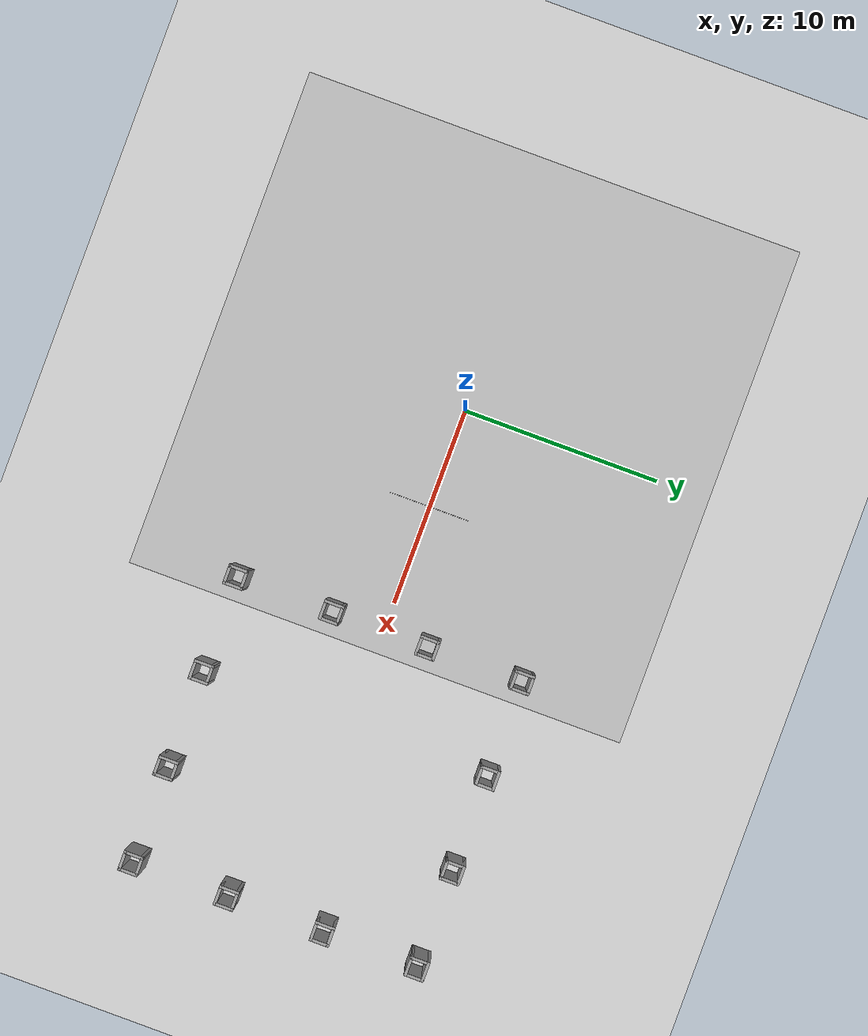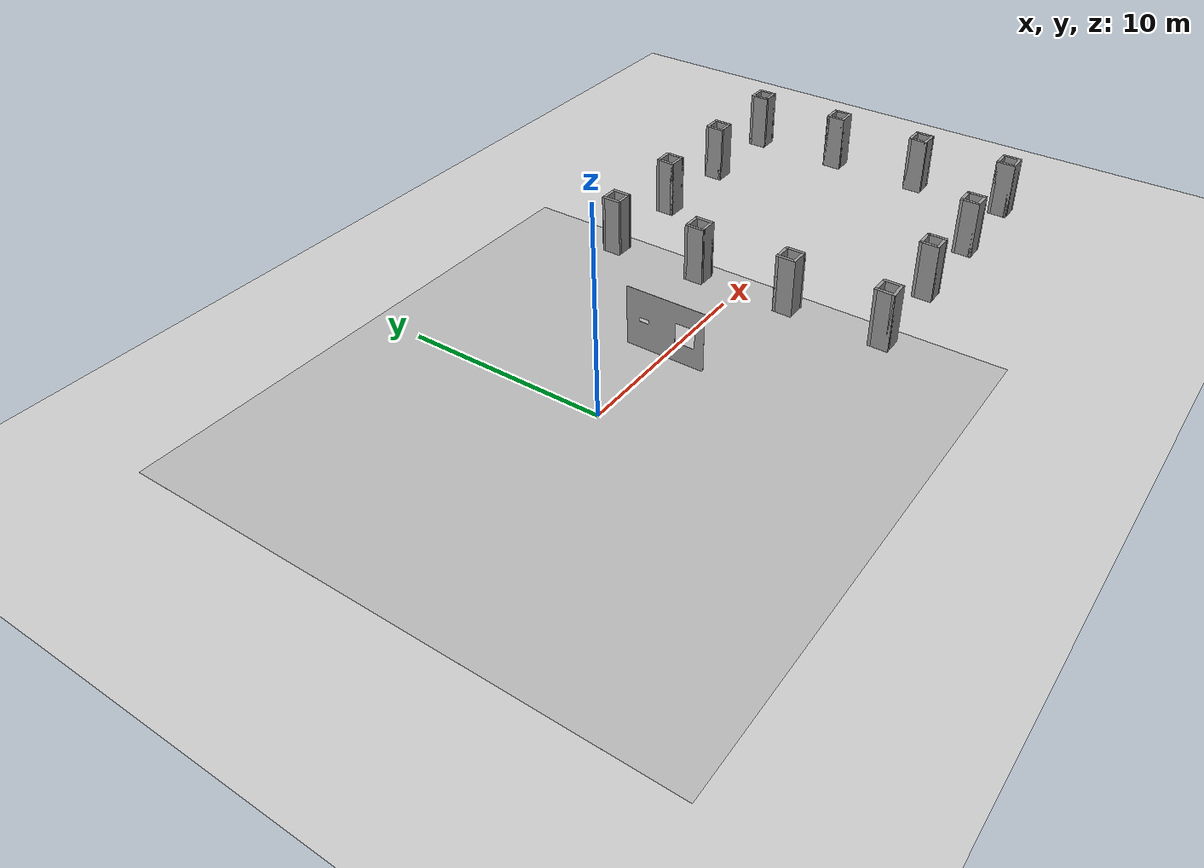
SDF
<sdf version="1.7">
 <world name="default">
  <scene><shadows>0</shadows><ambient>0.4 0.4 0.4 1</ambient><background>0.7 0.7 0.7 1</background></scene>
  <light name="sun" type="directional">
   <cast_shadows>0</cast_shadows>
   <pose>0 0 5 0 -0 0</pose>
   <diffuse>0.8 0.8 0.8 1</diffuse>
   <specular>0.1 0.1 0.1 1</specular>
   <attenuation>
    <range>1000</range>
    <constant>0.9</constant>
    <linear>0.01</linear>
    <quadratic>0.001</quadratic>
   </attenuation>
   <direction>-0.5 0.5 -1</direction>
   <spot><inner_angle>0</inner_angle><outer_angle>0</outer_angle><falloff>0</falloff></spot>
  </light>
  <physics name="default_physics" default="0" type="ode">
   <max_step_size>0.001</max_step_size>
   <real_time_factor>1</real_time_factor>
   <real_time_update_rate>1000</real_time_update_rate>
  </physics>
  <scene><ambient>0.4 0.4 0.4 1</ambient><background>0.7 0.7 0.7 1</background><shadows>1</shadows></scene>
  <spherical_coordinates>
   <surface_model>EARTH_WGS84</surface_model>
   <latitude_deg>0</latitude_deg>
   <longitude_deg>0</longitude_deg>
   <elevation>0</elevation>
   <heading_deg>0</heading_deg>
  </spherical_coordinates>
  <model name="ground_plane">
   <static>1</static>
   <link name="link">
    <collision name="collision">
     <geometry><plane><normal>0 0 1</normal><size>100 100</size></plane></geometry>
     <surface><friction><ode><mu>1</mu><mu2>1</mu2></ode></friction></surface>
    </collision>
    <visual name="visual">
     <cast_shadows>0</cast_shadows>
     <geometry><plane><normal>0 0 1</normal><size>100 100</size></plane></geometry>
     <material>
      <script><uri>file://media/materials/scripts/gazebo.material</uri><name>Gazebo/Grey</name></script>
     </material>
    </visual>
    <velocity_decay><linear>0</linear><angular>0</angular></velocity_decay>
   </link>
  </model>
  <gravity>0 0 -9.8</gravity>
  <magnetic_field>6e-06 2.3e-05 -4.2e-05</magnetic_field>
  <atmosphere type="adiabatic"/>
  <model name="Floor_room">
   <link name="main">
    <pose>0 0 0.01 0 -0 0</pose>
    <collision name="main_Collision">
     <geometry><box><size>25.5536 25.5536 0.000328</size></box></geometry>
    </collision>
    <visual name="main_Visual">
     <geometry><box><size>25.5536 25.5536 0.000328</size></box></geometry>
     <material>
      <script>
       <uri>model://Floor_room/materials/scripts</uri>
       <uri>model://Floor_room/materials/textures</uri>
       <name>floor_room</name>
      </script>
     </material>
    </visual>
   </link>
   <static>1</static>
   <pose>-0.165528 -0.09313 0.001198 0 -0 0</pose>
  </model>
  <model name="pillar_walls">
   <pose>18.5945 -0.206454 0.010682 0 -0 0</pose>
   <link name="Wall_101">
    <collision name="Wall_101_Collision">
     <geometry><box><size>1 0.15 3</size></box></geometry>
     <pose>0 0 1.5 0 -0 0</pose>
    </collision>
    <visual name="Wall_101_Visual">
     <pose>0 0 1.5 0 -0 0</pose>
     <geometry><box><size>1 0.15 3</size></box></geometry>
     <material>
      <script><uri>file://media/materials/scripts/gazebo.material</uri><name>Gazebo/Grey</name></script>
      <ambient>1 1 1 1</ambient>
     </material>
     <meta><layer>0</layer></meta>
    </visual>
    <pose>6.83802 2.4525 0 0 -0 -1.5708</pose>
   </link>
   <link name="Wall_102">
    <collision name="Wall_102_Collision">
     <geometry><box><size>1 0.15 3</size></box></geometry>
     <pose>0 0 1.5 0 -0 0</pose>
    </collision>
    <visual name="Wall_102_Visual">
     <pose>0 0 1.5 0 -0 0</pose>
     <geometry><box><size>1 0.15 3</size></box></geometry>
     <material>
      <script><uri>file://media/materials/scripts/gazebo.material</uri><name>Gazebo/Grey</name></script>
      <ambient>1 1 1 1</ambient>
     </material>
     <meta><layer>0</layer></meta>
    </visual>
    <pose>7.26302 2.0275 0 0 -0 0</pose>
   </link>
   <link name="Wall_103">
    <collision name="Wall_103_Collision">
     <geometry><box><size>1 0.15 3</size></box></geometry>
     <pose>0 0 1.5 0 -0 0</pose>
    </collision>
    <visual name="Wall_103_Visual">
     <pose>0 0 1.5 0 -0 0</pose>
     <geometry><box><size>1 0.15 3</size></box></geometry>
     <material>
      <script><uri>file://media/materials/scripts/gazebo.material</uri><name>Gazebo/Grey</name></script>
      <ambient>1 1 1 1</ambient>
     </material>
     <meta><layer>0</layer></meta>
    </visual>
    <pose>7.68802 2.4525 0 0 -0 1.5708</pose>
   </link>
   <link name="Wall_107">
    <collision name="Wall_107_Collision">
     <geometry><box><size>1 0.15 3</size></box></geometry>
     <pose>0 0 1.5 0 -0 0</pose>
    </collision>
    <visual name="Wall_107_Visual">
     <pose>0 0 1.5 0 -0 0</pose>
     <geometry><box><size>1 0.15 3</size></box></geometry>
     <material>
      <script><uri>file://media/materials/scripts/gazebo.material</uri><name>Gazebo/Grey</name></script>
      <ambient>1 1 1 1</ambient>
     </material>
     <meta><layer>0</layer></meta>
    </visual>
    <pose>-7.68398 -2.4265 0 0 -0 -1.5708</pose>
   </link>
   <link name="Wall_125">
    <collision name="Wall_125_Collision">
     <geometry><box><size>1 0.15 3</size></box></geometry>
     <pose>0 0 1.5 0 -0 0</pose>
    </collision>
    <visual name="Wall_125_Visual">
     <pose>0 0 1.5 0 -0 0</pose>
     <geometry><box><size>1 0.15 3</size></box></geometry>
     <material>
      <script><uri>file://media/materials/scripts/gazebo.material</uri><name>Gazebo/Grey</name></script>
      <ambient>1 1 1 1</ambient>
     </material>
     <meta><layer>0</layer></meta>
    </visual>
    <pose>6.81502 -2.4265 0 0 -0 -1.5708</pose>
   </link>
   <link name="Wall_126">
    <collision name="Wall_126_Collision">
     <geometry><box><size>1 0.15 3</size></box></geometry>
     <pose>0 0 1.5 0 -0 0</pose>
    </collision>
    <visual name="Wall_126_Visual">
     <pose>0 0 1.5 0 -0 0</pose>
     <geometry><box><size>1 0.15 3</size></box></geometry>
     <material>
      <script><uri>file://media/materials/scripts/gazebo.material</uri><name>Gazebo/Grey</name></script>
      <ambient>1 1 1 1</ambient>
     </material>
     <meta><layer>0</layer></meta>
    </visual>
    <pose>7.24002 -2.8515 0 0 -0 0</pose>
   </link>
   <link name="Wall_127">
    <collision name="Wall_127_Collision">
     <geometry><box><size>1 0.15 3</size></box></geometry>
     <pose>0 0 1.5 0 -0 0</pose>
    </collision>
    <visual name="Wall_127_Visual">
     <pose>0 0 1.5 0 -0 0</pose>
     <geometry><box><size>1 0.15 3</size></box></geometry>
     <material>
      <script><uri>file://media/materials/scripts/gazebo.material</uri><name>Gazebo/Grey</name></script>
      <ambient>1 1 1 1</ambient>
     </material>
     <meta><layer>0</layer></meta>
    </visual>
    <pose>7.66502 -2.4265 0 0 -0 1.5708</pose>
   </link>
   <link name="Wall_131">
    <collision name="Wall_131_Collision">
     <geometry><box><size>1 0.15 3</size></box></geometry>
     <pose>0 0 1.5 0 -0 0</pose>
    </collision>
    <visual name="Wall_131_Visual">
     <pose>0 0 1.5 0 -0 0</pose>
     <geometry><box><size>1 0.15 3</size></box></geometry>
     <material>
      <script><uri>file://media/materials/scripts/gazebo.material</uri><name>Gazebo/Grey</name></script>
      <ambient>1 1 1 1</ambient>
     </material>
     <meta><layer>0</layer></meta>
    </visual>
    <pose>-7.69298 -7.2895 0 0 -0 -1.5708</pose>
   </link>
   <link name="Wall_132">
    <collision name="Wall_132_Collision">
     <geometry><box><size>1 0.15 3</size></box></geometry>
     <pose>0 0 1.5 0 -0 0</pose>
    </collision>
    <visual name="Wall_132_Visual">
     <pose>0 0 1.5 0 -0 0</pose>
     <geometry><box><size>1 0.15 3</size></box></geometry>
     <material>
      <script><uri>file://media/materials/scripts/gazebo.material</uri><name>Gazebo/Grey</name></script>
      <ambient>1 1 1 1</ambient>
     </material>
     <meta><layer>0</layer></meta>
    </visual>
    <pose>-7.26798 -7.7145 0 0 -0 0</pose>
   </link>
   <link name="Wall_133">
    <collision name="Wall_133_Collision">
     <geometry><box><size>1 0.15 3</size></box></geometry>
     <pose>0 0 1.5 0 -0 0</pose>
    </collision>
    <visual name="Wall_133_Visual">
     <pose>0 0 1.5 0 -0 0</pose>
     <geometry><box><size>1 0.15 3</size></box></geometry>
     <material>
      <script><uri>file://media/materials/scripts/gazebo.material</uri><name>Gazebo/Grey</name></script>
      <ambient>1 1 1 1</ambient>
     </material>
     <meta><layer>0</layer></meta>
    </visual>
    <pose>-6.84298 -7.2895 0 0 -0 1.5708</pose>
   </link>
   <link name="Wall_137">
    <collision name="Wall_137_Collision">
     <geometry><box><size>1 0.15 3</size></box></geometry>
     <pose>0 0 1.5 0 -0 0</pose>
    </collision>
    <visual name="Wall_137_Visual">
     <pose>0 0 1.5 0 -0 0</pose>
     <geometry><box><size>1 0.15 3</size></box></geometry>
     <material>
      <script><uri>file://media/materials/scripts/gazebo.material</uri><name>Gazebo/Grey</name></script>
      <ambient>1 1 1 1</ambient>
     </material>
     <meta><layer>0</layer></meta>
    </visual>
    <pose>-2.88098 -7.2705 0 0 -0 -1.5708</pose>
   </link>
   <link name="Wall_138">
    <collision name="Wall_138_Collision">
     <geometry><box><size>1 0.15 3</size></box></geometry>
     <pose>0 0 1.5 0 -0 0</pose>
    </collision>
    <visual name="Wall_138_Visual">
     <pose>0 0 1.5 0 -0 0</pose>
     <geometry><box><size>1 0.15 3</size></box></geometry>
     <material>
      <script><uri>file://media/materials/scripts/gazebo.material</uri><name>Gazebo/Grey</name></script>
      <ambient>1 1 1 1</ambient>
     </material>
     <meta><layer>0</layer></meta>
    </visual>
    <pose>-2.45598 -7.6955 0 0 -0 0</pose>
   </link>
   <link name="Wall_139">
    <collision name="Wall_139_Collision">
     <geometry><box><size>1 0.15 3</size></box></geometry>
     <pose>0 0 1.5 0 -0 0</pose>
    </collision>
    <visual name="Wall_139_Visual">
     <pose>0 0 1.5 0 -0 0</pose>
     <geometry><box><size>1 0.15 3</size></box></geometry>
     <material>
      <script><uri>file://media/materials/scripts/gazebo.material</uri><name>Gazebo/Grey</name></script>
      <ambient>1 1 1 1</ambient>
     </material>
     <meta><layer>0</layer></meta>
    </visual>
    <pose>-2.03098 -7.2705 0 0 -0 1.5708</pose>
   </link>
   <link name="Wall_143">
    <collision name="Wall_143_Collision">
     <geometry><box><size>1 0.15 3</size></box></geometry>
     <pose>0 0 1.5 0 -0 0</pose>
    </collision>
    <visual name="Wall_143_Visual">
     <pose>0 0 1.5 0 -0 0</pose>
     <geometry><box><size>1 0.15 3</size></box></geometry>
     <material>
      <script><uri>file://media/materials/scripts/gazebo.material</uri><name>Gazebo/Grey</name></script>
      <ambient>1 1 1 1</ambient>
     </material>
     <meta><layer>0</layer></meta>
    </visual>
    <pose>2.00602 -7.2705 0 0 -0 -1.5708</pose>
   </link>
   <link name="Wall_144">
    <collision name="Wall_144_Collision">
     <geometry><box><size>1 0.15 3</size></box></geometry>
     <pose>0 0 1.5 0 -0 0</pose>
    </collision>
    <visual name="Wall_144_Visual">
     <pose>0 0 1.5 0 -0 0</pose>
     <geometry><box><size>1 0.15 3</size></box></geometry>
     <material>
      <script><uri>file://media/materials/scripts/gazebo.material</uri><name>Gazebo/Grey</name></script>
      <ambient>1 1 1 1</ambient>
     </material>
     <meta><layer>0</layer></meta>
    </visual>
    <pose>2.43102 -7.6955 0 0 -0 0</pose>
   </link>
   <link name="Wall_145">
    <collision name="Wall_145_Collision">
     <geometry><box><size>1 0.15 3</size></box></geometry>
     <pose>0 0 1.5 0 -0 0</pose>
    </collision>
    <visual name="Wall_145_Visual">
     <pose>0 0 1.5 0 -0 0</pose>
     <geometry><box><size>1 0.15 3</size></box></geometry>
     <material>
      <script><uri>file://media/materials/scripts/gazebo.material</uri><name>Gazebo/Grey</name></script>
      <ambient>1 1 1 1</ambient>
     </material>
     <meta><layer>0</layer></meta>
    </visual>
    <pose>2.85602 -7.2705 0 0 -0 1.5708</pose>
   </link>
   <link name="Wall_149">
    <collision name="Wall_149_Collision">
     <geometry><box><size>1 0.15 3</size></box></geometry>
     <pose>0 0 1.5 0 -0 0</pose>
    </collision>
    <visual name="Wall_149_Visual">
     <pose>0 0 1.5 0 -0 0</pose>
     <geometry><box><size>1 0.15 3</size></box></geometry>
     <material>
      <script><uri>file://media/materials/scripts/gazebo.material</uri><name>Gazebo/Grey</name></script>
      <ambient>1 1 1 1</ambient>
     </material>
     <meta><layer>0</layer></meta>
    </visual>
    <pose>6.83702 -7.2705 0 0 -0 -1.5708</pose>
   </link>
   <link name="Wall_150">
    <collision name="Wall_150_Collision">
     <geometry><box><size>1 0.15 3</size></box></geometry>
     <pose>0 0 1.5 0 -0 0</pose>
    </collision>
    <visual name="Wall_150_Visual">
     <pose>0 0 1.5 0 -0 0</pose>
     <geometry><box><size>1 0.15 3</size></box></geometry>
     <material>
      <script><uri>file://media/materials/scripts/gazebo.material</uri><name>Gazebo/Grey</name></script>
      <ambient>1 1 1 1</ambient>
     </material>
     <meta><layer>0</layer></meta>
    </visual>
    <pose>7.26202 -7.6955 0 0 -0 0</pose>
   </link>
   <link name="Wall_151">
    <collision name="Wall_151_Collision">
     <geometry><box><size>1 0.15 3</size></box></geometry>
     <pose>0 0 1.5 0 -0 0</pose>
    </collision>
    <visual name="Wall_151_Visual">
     <pose>0 0 1.5 0 -0 0</pose>
     <geometry><box><size>1 0.15 3</size></box></geometry>
     <material>
      <script><uri>file://media/materials/scripts/gazebo.material</uri><name>Gazebo/Grey</name></script>
      <ambient>1 1 1 1</ambient>
     </material>
     <meta><layer>0</layer></meta>
    </visual>
    <pose>7.68702 -7.2705 0 0 -0 1.5708</pose>
   </link>
   <link name="Wall_153">
    <collision name="Wall_153_Collision">
     <geometry><box><size>1 0.15 3</size></box></geometry>
     <pose>0 0 1.5 0 -0 0</pose>
    </collision>
    <visual name="Wall_153_Visual">
     <pose>0 0 1.5 0 -0 0</pose>
     <geometry><box><size>1 0.15 3</size></box></geometry>
     <material>
      <script><uri>file://media/materials/scripts/gazebo.material</uri><name>Gazebo/Grey</name></script>
      <ambient>1 1 1 1</ambient>
     </material>
     <meta><layer>0</layer></meta>
    </visual>
    <pose>-2.42698 7.7145 0 0 -0 0</pose>
   </link>
   <link name="Wall_158">
    <collision name="Wall_158_Collision">
     <geometry><box><size>1 0.15 3</size></box></geometry>
     <pose>0 0 1.5 0 -0 0</pose>
    </collision>
    <visual name="Wall_158_Visual">
     <pose>0 0 1.5 0 -0 0</pose>
     <geometry><box><size>1 0.15 3</size></box></geometry>
     <material>
      <script><uri>file://media/materials/scripts/gazebo.material</uri><name>Gazebo/Grey</name></script>
      <ambient>1 1 1 1</ambient>
     </material>
     <meta><layer>0</layer></meta>
    </visual>
    <pose>7.26802 7.6925 0 0 -0 3.14159</pose>
   </link>
   <link name="Wall_159">
    <collision name="Wall_159_Collision">
     <geometry><box><size>1 0.15 3</size></box></geometry>
     <pose>0 0 1.5 0 -0 0</pose>
    </collision>
    <visual name="Wall_159_Visual">
     <pose>0 0 1.5 0 -0 0</pose>
     <geometry><box><size>1 0.15 3</size></box></geometry>
     <material>
      <script><uri>file://media/materials/scripts/gazebo.material</uri><name>Gazebo/Grey</name></script>
      <ambient>1 1 1 1</ambient>
     </material>
     <meta><layer>0</layer></meta>
    </visual>
    <pose>6.84302 7.2675 0 0 -0 -1.5708</pose>
   </link>
   <link name="Wall_161">
    <collision name="Wall_161_Collision">
     <geometry><box><size>1 0.15 3</size></box></geometry>
     <pose>0 0 1.5 0 -0 0</pose>
    </collision>
    <visual name="Wall_161_Visual">
     <pose>0 0 1.5 0 -0 0</pose>
     <geometry><box><size>1 0.15 3</size></box></geometry>
     <material>
      <script><uri>file://media/materials/scripts/gazebo.material</uri><name>Gazebo/Grey</name></script>
      <ambient>1 1 1 1</ambient>
     </material>
     <meta><layer>0</layer></meta>
    </visual>
    <pose>-7.25198 2.8855 0 0 -0 0</pose>
   </link>
   <link name="Wall_167">
    <collision name="Wall_167_Collision">
     <geometry><box><size>1 0.15 3</size></box></geometry>
     <pose>0 0 1.5 0 -0 0</pose>
    </collision>
    <visual name="Wall_167_Visual">
     <pose>0 0 1.5 0 -0 0</pose>
     <geometry><box><size>1 0.15 3</size></box></geometry>
     <material>
      <script><uri>file://media/materials/scripts/gazebo.material</uri><name>Gazebo/Grey</name></script>
      <ambient>1 1 1 1</ambient>
     </material>
     <meta><layer>0</layer></meta>
    </visual>
    <pose>7.26302 2.8775 0 0 -0 0</pose>
   </link>
   <link name="Wall_177">
    <collision name="Wall_177_Collision">
     <geometry><box><size>1 0.15 3</size></box></geometry>
     <pose>0 0 1.5 0 -0 0</pose>
    </collision>
    <visual name="Wall_177_Visual">
     <pose>0 0 1.5 0 -0 0</pose>
     <geometry><box><size>1 0.15 3</size></box></geometry>
     <material>
      <script><uri>file://media/materials/scripts/gazebo.material</uri><name>Gazebo/Grey</name></script>
      <ambient>1 1 1 1</ambient>
     </material>
     <meta><layer>0</layer></meta>
    </visual>
    <pose>7.24002 -2.0015 0 0 -0 0</pose>
   </link>
   <link name="Wall_179">
    <collision name="Wall_179_Collision">
     <geometry><box><size>1 0.15 3</size></box></geometry>
     <pose>0 0 1.5 0 -0 0</pose>
    </collision>
    <visual name="Wall_179_Visual">
     <pose>0 0 1.5 0 -0 0</pose>
     <geometry><box><size>1 0.15 3</size></box></geometry>
     <material>
      <script><uri>file://media/materials/scripts/gazebo.material</uri><name>Gazebo/Grey</name></script>
      <ambient>1 1 1 1</ambient>
     </material>
     <meta><layer>0</layer></meta>
    </visual>
    <pose>7.26202 -6.8455 0 0 -0 0</pose>
   </link>
   <link name="Wall_181">
    <collision name="Wall_181_Collision">
     <geometry><box><size>1 0.15 3</size></box></geometry>
     <pose>0 0 1.5 0 -0 0</pose>
    </collision>
    <visual name="Wall_181_Visual">
     <pose>0 0 1.5 0 -0 0</pose>
     <geometry><box><size>1 0.15 3</size></box></geometry>
     <material>
      <script><uri>file://media/materials/scripts/gazebo.material</uri><name>Gazebo/Grey</name></script>
      <ambient>1 1 1 1</ambient>
     </material>
     <meta><layer>0</layer></meta>
    </visual>
    <pose>2.43102 -6.8455 0 0 -0 0</pose>
   </link>
   <link name="Wall_183">
    <collision name="Wall_183_Collision">
     <geometry><box><size>1 0.15 3</size></box></geometry>
     <pose>0 0 1.5 0 -0 0</pose>
    </collision>
    <visual name="Wall_183_Visual">
     <pose>0 0 1.5 0 -0 0</pose>
     <geometry><box><size>1 0.15 3</size></box></geometry>
     <material>
      <script><uri>file://media/materials/scripts/gazebo.material</uri><name>Gazebo/Grey</name></script>
      <ambient>1 1 1 1</ambient>
     </material>
     <meta><layer>0</layer></meta>
    </visual>
    <pose>-2.45598 -6.8455 0 0 -0 0</pose>
   </link>
   <link name="Wall_185">
    <collision name="Wall_185_Collision">
     <geometry><box><size>1 0.15 3</size></box></geometry>
     <pose>0 0 1.5 0 -0 0</pose>
    </collision>
    <visual name="Wall_185_Visual">
     <pose>0 0 1.5 0 -0 0</pose>
     <geometry><box><size>1 0.15 3</size></box></geometry>
     <material>
      <script><uri>file://media/materials/scripts/gazebo.material</uri><name>Gazebo/Grey</name></script>
      <ambient>1 1 1 1</ambient>
     </material>
     <meta><layer>0</layer></meta>
    </visual>
    <pose>-7.26798 -6.8645 0 0 -0 0</pose>
   </link>
   <link name="Wall_187">
    <collision name="Wall_187_Collision">
     <geometry><box><size>1 0.15 3</size></box></geometry>
     <pose>0 0 1.5 0 -0 0</pose>
    </collision>
    <visual name="Wall_187_Visual">
     <pose>0 0 1.5 0 -0 0</pose>
     <geometry><box><size>1 0.15 3</size></box></geometry>
     <material>
      <script><uri>file://media/materials/scripts/gazebo.material</uri><name>Gazebo/Grey</name></script>
      <ambient>1 1 1 1</ambient>
     </material>
     <meta><layer>0</layer></meta>
    </visual>
    <pose>-7.25898 -2.8515 0 0 -0 0</pose>
   </link>
   <link name="Wall_188">
    <collision name="Wall_188_Collision">
     <geometry><box><size>1 0.15 3</size></box></geometry>
     <pose>0 0 1.5 0 -0 0</pose>
    </collision>
    <visual name="Wall_188_Visual">
     <pose>0 0 1.5 0 -0 0</pose>
     <geometry><box><size>1 0.15 3</size></box></geometry>
     <material>
      <script><uri>file://media/materials/scripts/gazebo.material</uri><name>Gazebo/Grey</name></script>
      <ambient>1 1 1 1</ambient>
     </material>
     <meta><layer>0</layer></meta>
    </visual>
    <pose>-6.83398 -2.4265 0 0 -0 1.5708</pose>
   </link>
   <link name="Wall_189">
    <collision name="Wall_189_Collision">
     <geometry><box><size>1 0.15 3</size></box></geometry>
     <pose>0 0 1.5 0 -0 0</pose>
    </collision>
    <visual name="Wall_189_Visual">
     <pose>0 0 1.5 0 -0 0</pose>
     <geometry><box><size>1 0.15 3</size></box></geometry>
     <material>
      <script><uri>file://media/materials/scripts/gazebo.material</uri><name>Gazebo/Grey</name></script>
      <ambient>1 1 1 1</ambient>
     </material>
     <meta><layer>0</layer></meta>
    </visual>
    <pose>-7.25898 -2.0015 0 0 -0 3.14159</pose>
   </link>
   <link name="Wall_194">
    <collision name="Wall_194_Collision">
     <geometry><box><size>1 0.15 3</size></box></geometry>
     <pose>0 0 1.5 0 -0 0</pose>
    </collision>
    <visual name="Wall_194_Visual">
     <pose>0 0 1.5 0 -0 0</pose>
     <geometry><box><size>1 0.15 3</size></box></geometry>
     <material>
      <script><uri>file://media/materials/scripts/gazebo.material</uri><name>Gazebo/Grey</name></script>
      <ambient>1 1 1 1</ambient>
     </material>
     <meta><layer>0</layer></meta>
    </visual>
    <pose>2.38302 7.7035 0 0 -0 0</pose>
   </link>
   <link name="Wall_195">
    <collision name="Wall_195_Collision">
     <geometry><box><size>1 0.15 3</size></box></geometry>
     <pose>0 0 1.5 0 -0 0</pose>
    </collision>
    <visual name="Wall_195_Visual">
     <pose>0 0 1.5 0 -0 0</pose>
     <geometry><box><size>1 0.15 3</size></box></geometry>
     <material>
      <script><uri>file://media/materials/scripts/gazebo.material</uri><name>Gazebo/Grey</name></script>
      <ambient>1 1 1 1</ambient>
     </material>
     <meta><layer>0</layer></meta>
    </visual>
    <pose>2.80802 7.2785 0 0 -0 -1.5708</pose>
   </link>
   <link name="Wall_196">
    <collision name="Wall_196_Collision">
     <geometry><box><size>1 0.15 3</size></box></geometry>
     <pose>0 0 1.5 0 -0 0</pose>
    </collision>
    <visual name="Wall_196_Visual">
     <pose>0 0 1.5 0 -0 0</pose>
     <geometry><box><size>1 0.15 3</size></box></geometry>
     <material>
      <script><uri>file://media/materials/scripts/gazebo.material</uri><name>Gazebo/Grey</name></script>
      <ambient>1 1 1 1</ambient>
     </material>
     <meta><layer>0</layer></meta>
    </visual>
    <pose>2.38302 6.8535 0 0 -0 3.14159</pose>
   </link>
   <link name="Wall_51">
    <collision name="Wall_51_Collision">
     <geometry><box><size>0.5 0.15 2.5</size></box></geometry>
     <pose>0 0 1.25 0 -0 0</pose>
    </collision>
    <visual name="Wall_51_Visual">
     <pose>0 0 1.25 0 -0 0</pose>
     <geometry><box><size>0.5 0.15 2.5</size></box></geometry>
     <material>
      <script><uri>file://media/materials/scripts/gazebo.material</uri><name>Gazebo/Grey</name></script>
      <ambient>1 1 1 1</ambient>
     </material>
     <meta><layer>0</layer></meta>
    </visual>
    <pose>-7.51793 7.6927 0 0 -0 -3.14046</pose>
   </link>
   <link name="Wall_52">
    <collision name="Wall_52_Collision">
     <geometry><box><size>1 0.15 3</size></box></geometry>
     <pose>0 0 1.5 0 -0 0</pose>
    </collision>
    <visual name="Wall_52_Visual">
     <pose>0 0 1.5 0 -0 0</pose>
     <geometry><box><size>1 0.15 3</size></box></geometry>
     <material>
      <script><uri>file://media/materials/scripts/gazebo.material</uri><name>Gazebo/Grey</name></script>
      <ambient>1 1 1 1</ambient>
     </material>
     <meta><layer>0</layer></meta>
    </visual>
    <pose>-7.69298 7.2675 0 0 -0 -1.5708</pose>
   </link>
   <link name="Wall_53">
    <collision name="Wall_53_Collision">
     <geometry><box><size>1 0.15 3</size></box></geometry>
     <pose>0 0 1.5 0 -0 0</pose>
    </collision>
    <visual name="Wall_53_Visual">
     <pose>0 0 1.5 0 -0 0</pose>
     <geometry><box><size>1 0.15 3</size></box></geometry>
     <material>
      <script><uri>file://media/materials/scripts/gazebo.material</uri><name>Gazebo/Grey</name></script>
      <ambient>1 1 1 1</ambient>
     </material>
     <meta><layer>0</layer></meta>
    </visual>
    <pose>-7.26798 6.8425 0 0 -0 0</pose>
   </link>
   <link name="Wall_54">
    <collision name="Wall_54_Collision">
     <geometry><box><size>1 0.15 3</size></box></geometry>
     <pose>0 0 1.5 0 -0 0</pose>
    </collision>
    <visual name="Wall_54_Visual">
     <pose>0 0 1.5 0 -0 0</pose>
     <geometry><box><size>1 0.15 3</size></box></geometry>
     <material>
      <script><uri>file://media/materials/scripts/gazebo.material</uri><name>Gazebo/Grey</name></script>
      <ambient>1 1 1 1</ambient>
     </material>
     <meta><layer>0</layer></meta>
    </visual>
    <pose>-6.84298 7.2675 0 0 -0 1.5708</pose>
   </link>
   <link name="Wall_55">
    <collision name="Wall_55_Collision">
     <geometry><box><size>1 0.15 3</size></box></geometry>
     <pose>0 0 1.5 0 -0 0</pose>
    </collision>
    <visual name="Wall_55_Visual">
     <pose>0 0 1.5 0 -0 0</pose>
     <geometry><box><size>1 0.15 3</size></box></geometry>
     <material>
      <script><uri>file://media/materials/scripts/gazebo.material</uri><name>Gazebo/Grey</name></script>
      <ambient>1 1 1 1</ambient>
     </material>
     <meta><layer>0</layer></meta>
    </visual>
    <pose>-7.26798 7.6925 0 0 -0 3.14159</pose>
   </link>
   <link name="Wall_59">
    <collision name="Wall_59_Collision">
     <geometry><box><size>1 0.15 3</size></box></geometry>
     <pose>0 0 1.5 0 -0 0</pose>
    </collision>
    <visual name="Wall_59_Visual">
     <pose>0 0 1.5 0 -0 0</pose>
     <geometry><box><size>1 0.15 3</size></box></geometry>
     <material>
      <script><uri>file://media/materials/scripts/gazebo.material</uri><name>Gazebo/Grey</name></script>
      <ambient>1 1 1 1</ambient>
     </material>
     <meta><layer>0</layer></meta>
    </visual>
    <pose>-7.67698 2.4605 0 0 -0 -1.5708</pose>
   </link>
   <link name="Wall_60">
    <collision name="Wall_60_Collision">
     <geometry><box><size>1 0.15 3</size></box></geometry>
     <pose>0 0 1.5 0 -0 0</pose>
    </collision>
    <visual name="Wall_60_Visual">
     <pose>0 0 1.5 0 -0 0</pose>
     <geometry><box><size>1 0.15 3</size></box></geometry>
     <material>
      <script><uri>file://media/materials/scripts/gazebo.material</uri><name>Gazebo/Grey</name></script>
      <ambient>1 1 1 1</ambient>
     </material>
     <meta><layer>0</layer></meta>
    </visual>
    <pose>-7.25198 2.0355 0 0 -0 0</pose>
   </link>
   <link name="Wall_61">
    <collision name="Wall_61_Collision">
     <geometry><box><size>1 0.15 3</size></box></geometry>
     <pose>0 0 1.5 0 -0 0</pose>
    </collision>
    <visual name="Wall_61_Visual">
     <pose>0 0 1.5 0 -0 0</pose>
     <geometry><box><size>1 0.15 3</size></box></geometry>
     <material>
      <script><uri>file://media/materials/scripts/gazebo.material</uri><name>Gazebo/Grey</name></script>
      <ambient>1 1 1 1</ambient>
     </material>
     <meta><layer>0</layer></meta>
    </visual>
    <pose>-6.82698 2.4605 0 0 -0 1.5708</pose>
   </link>
   <link name="Wall_77">
    <collision name="Wall_77_Collision">
     <geometry><box><size>1 0.15 3</size></box></geometry>
     <pose>0 0 1.5 0 -0 0</pose>
    </collision>
    <visual name="Wall_77_Visual">
     <pose>0 0 1.5 0 -0 0</pose>
     <geometry><box><size>1 0.15 3</size></box></geometry>
     <material>
      <script><uri>file://media/materials/scripts/gazebo.material</uri><name>Gazebo/Grey</name></script>
      <ambient>1 1 1 1</ambient>
     </material>
     <meta><layer>0</layer></meta>
    </visual>
    <pose>-2.85198 7.2895 0 0 -0 -1.5708</pose>
   </link>
   <link name="Wall_78">
    <collision name="Wall_78_Collision">
     <geometry><box><size>1 0.15 3</size></box></geometry>
     <pose>0 0 1.5 0 -0 0</pose>
    </collision>
    <visual name="Wall_78_Visual">
     <pose>0 0 1.5 0 -0 0</pose>
     <geometry><box><size>1 0.15 3</size></box></geometry>
     <material>
      <script><uri>file://media/materials/scripts/gazebo.material</uri><name>Gazebo/Grey</name></script>
      <ambient>1 1 1 1</ambient>
     </material>
     <meta><layer>0</layer></meta>
    </visual>
    <pose>-2.42698 6.8645 0 0 -0 0</pose>
   </link>
   <link name="Wall_79">
    <collision name="Wall_79_Collision">
     <geometry><box><size>1 0.15 3</size></box></geometry>
     <pose>0 0 1.5 0 -0 0</pose>
    </collision>
    <visual name="Wall_79_Visual">
     <pose>0 0 1.5 0 -0 0</pose>
     <geometry><box><size>1 0.15 3</size></box></geometry>
     <material>
      <script><uri>file://media/materials/scripts/gazebo.material</uri><name>Gazebo/Grey</name></script>
      <ambient>1 1 1 1</ambient>
     </material>
     <meta><layer>0</layer></meta>
    </visual>
    <pose>-2.00198 7.2895 0 0 -0 1.5708</pose>
   </link>
   <link name="Wall_83">
    <collision name="Wall_83_Collision">
     <geometry><box><size>1 0.15 3</size></box></geometry>
     <pose>0 0 1.5 0 -0 0</pose>
    </collision>
    <visual name="Wall_83_Visual">
     <pose>0 0 1.5 0 -0 0</pose>
     <geometry><box><size>1 0.15 3</size></box></geometry>
     <material>
      <script><uri>file://media/materials/scripts/gazebo.material</uri><name>Gazebo/Grey</name></script>
      <ambient>1 1 1 1</ambient>
     </material>
     <meta><layer>0</layer></meta>
    </visual>
    <pose>1.95802 7.2785 0 0 -0 -1.5708</pose>
   </link>
   <link name="Wall_90">
    <collision name="Wall_90_Collision">
     <geometry><box><size>1 0.15 3</size></box></geometry>
     <pose>0 0 1.5 0 -0 0</pose>
    </collision>
    <visual name="Wall_90_Visual">
     <pose>0 0 1.5 0 -0 0</pose>
     <geometry><box><size>1 0.15 3</size></box></geometry>
     <material>
      <script><uri>file://media/materials/scripts/gazebo.material</uri><name>Gazebo/Grey</name></script>
      <ambient>1 1 1 1</ambient>
     </material>
     <meta><layer>0</layer></meta>
    </visual>
    <pose>7.26802 6.8425 0 0 -0 0</pose>
   </link>
   <link name="Wall_91">
    <collision name="Wall_91_Collision">
     <geometry><box><size>1 0.15 3</size></box></geometry>
     <pose>0 0 1.5 0 -0 0</pose>
    </collision>
    <visual name="Wall_91_Visual">
     <pose>0 0 1.5 0 -0 0</pose>
     <geometry><box><size>1 0.15 3</size></box></geometry>
     <material>
      <script><uri>file://media/materials/scripts/gazebo.material</uri><name>Gazebo/Grey</name></script>
      <ambient>1 1 1 1</ambient>
     </material>
     <meta><layer>0</layer></meta>
    </visual>
    <pose>7.69302 7.2675 0 0 -0 1.5708</pose>
   </link>
   <static>1</static>
  </model>
  <model name="wall_with_holes">
   <link name="link_1">
    <inertial>
     <mass>1</mass>
     <inertia>
      <ixx>0.166667</ixx>
      <ixy>0</ixy>
      <ixz>0</ixz>
      <iyy>0.166667</iyy>
      <iyz>0</iyz>
      <izz>0.166667</izz>
     </inertia>
    </inertial>
    <pose>2e-06 2e-06 -0 1.56618 -0.004242 -1.57078</pose>
    <visual name="visual">
     <geometry>
      <mesh>
       <uri>/home/nuc/aerial_navigation_development_environment/src/vehicle_simulator/world/wall.stl</uri>
       <scale>1 1 1</scale>
      </mesh>
     </geometry>
     <material>
      <lighting>1</lighting>
      <script><uri>file://media/materials/scripts/gazebo.material</uri><name>Gazebo/Grey</name></script>
      <shader type="pixel"/>
     </material>
    </visual>
    <collision name="collision">
     <geometry>
      <mesh>
       <uri>/home/nuc/aerial_navigation_development_environment/src/vehicle_simulator/world/wall.stl</uri>
       <scale>1 1 1</scale>
      </mesh>
     </geometry>
     <surface>
      <friction>
       <ode><mu>1</mu><mu2>1</mu2><fdir1>0 0 0</fdir1><slip1>0</slip1><slip2>0</slip2></ode>
       <torsional>
        <coefficient>1</coefficient>
        <patch_radius>0</patch_radius>
        <surface_radius>0</surface_radius>
        <use_patch_radius>1</use_patch_radius>
        <ode><slip>0</slip></ode>
       </torsional>
      </friction>
      <bounce><restitution_coefficient>0</restitution_coefficient><threshold>1e+06</threshold></bounce>
      <contact>
       <collide_without_contact>0</collide_without_contact>
       <collide_without_contact_bitmask>1</collide_without_contact_bitmask>
       <collide_bitmask>1</collide_bitmask>
       <ode>
        <soft_cfm>0</soft_cfm>
        <soft_erp>0.2</soft_erp>
        <kp>1e+13</kp>
        <kd>1</kd>
        <max_vel>0.01</max_vel>
        <min_depth>0</min_depth>
       </ode>
       <bullet>
        <split_impulse>1</split_impulse>
        <split_impulse_penetration_threshold>-0.01</split_impulse_penetration_threshold>
        <soft_cfm>0</soft_cfm>
        <soft_erp>0.2</soft_erp>
        <kp>1e+13</kp>
        <kd>1</kd>
       </bullet>
      </contact>
     </surface>
    </collision>
   </link>
   <static>1</static>
   <pose>4.98555 1.99705 0.002636 0 -0 0</pose>
  </model>
 </world>
</sdf>
